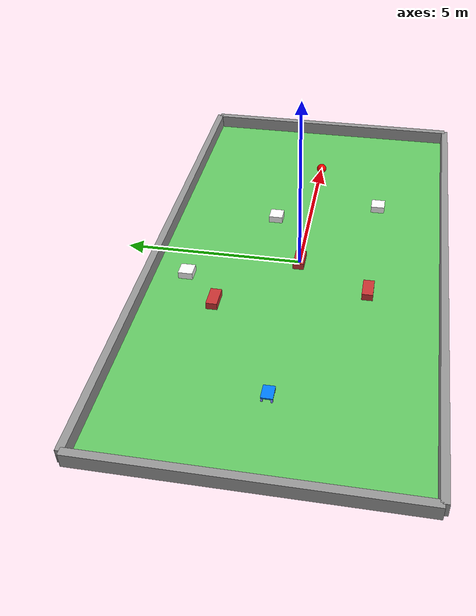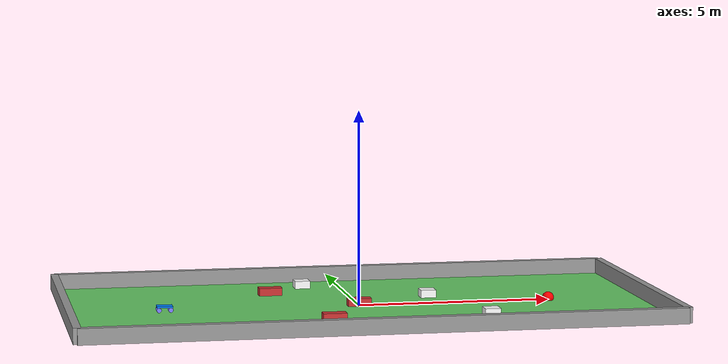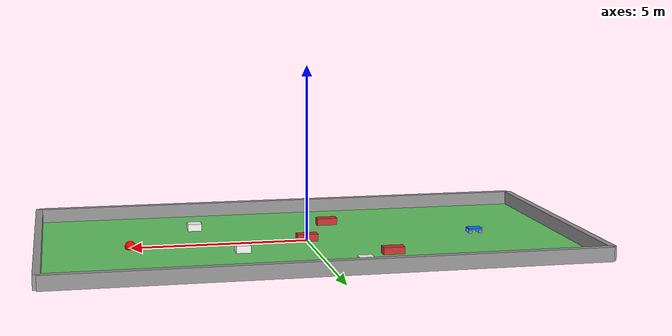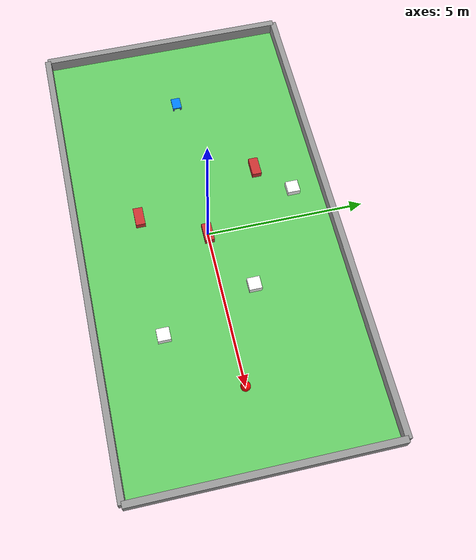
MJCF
<mujoco model="safe_drive_env">
    <compiler angle="degree" coordinate="local" autolimits="true"/>
    <option timestep="0.01" gravity="0 0 -9.8"/>
    <default>
        <joint damping=".03"/>
        <default class="wheel">
            <geom type="cylinder" size=".06 .02" rgba=".5 .5 1 1" friction="2 0.05 0.05"/>
        </default>
        <default class="decor">
            <site type="box" rgba=".5 1 .5 1"/>
        </default>
        <default class="box_obstacle">
            <geom type="box" size="0.2 0.2 0.1"
              contype="1" conaffinity="1"
              rgba="1 1 1 1"
              solref="0.02 1" solimp="0.9 0.95 0.001"/>
        </default>
    </default>
    <worldbody>
        <!-- Ground -->
        <geom name="floor" type="plane" size="7.5 4 0.1" rgba="0.4 0.8 0.4 1"/>
        <!-- Boundary walls -->
        <geom name="wall_left" type="box" size="0.1 4 0.2" pos="-7.5 0 0.2" rgba="0.6 0.6 0.6 1"/>
        <geom name="wall_right" type="box" size="0.1 4 0.2" pos="7.5 0 0.2" rgba="0.6 0.6 0.6 1"/>
        <geom name="wall_bottom" type="box" size="7.5 0.1 0.2" pos="0 -4 0.2" rgba="0.6 0.6 0.6 1"/>
        <geom name="wall_top" type="box" size="7.5 0.1 0.2" pos="0 4 0.2" rgba="0.6 0.6 0.6 1"/>
        <!-- 4-wheel robot -->
        <body name="robot" pos="-5 0 0">
            <freejoint/>
            <!-- Chassis -->
            <body name="chassis_body" pos="0 0 0">
                <geom name="chassis" pos="0 0 0.14" type="box" size="0.2 0.15 0.02" rgba="0 0.5 1 1"/>
                <!-- Front left wheel -->
                <body name="front_left_wheel" pos="0.15 -0.12 0.06" zaxis="0 1 0">
                    <joint name="left" type="hinge" axis="0 0 1"/>
                    <geom class="wheel"/>
                </body>
                <!-- Front right wheel -->
                <body name="front_right_wheel" pos="0.15 0.12 0.06" zaxis="0 1 0">
                    <joint name="right" type="hinge" axis="0 0 1"/>
                    <geom class="wheel"/>
                </body>
                <!-- Rear left wheel (passive but still hinge for rolling) -->
                <body name="rear_left_wheel" pos="-0.15 -0.12 0.06" zaxis="0 1 0">
                    <joint name="rear_left" type="hinge" axis="0 0 1" limited="false"/>
                    <geom class="wheel"/>
                </body>
                <!-- Rear right wheel (passive but still hinge for rolling) -->
                <body name="rear_right_wheel" pos="-0.15 0.12 0.06" zaxis="0 1 0">
                    <joint name="rear_right" type="hinge" axis="0 0 1" limited="false"/>
                    <geom class="wheel"/>
                </body>
            </body>
        </body>
        <!-- Target -->
        <body name="target" pos="5 0 0.05">
            <geom type="sphere" size="0.15" rgba="1 0 0 1"/>
        </body>
        <!-- Static Bricks -->
        <geom name="brick1" type="box" size="0.3 0.15 0.1" pos="-2 2 0.1" rgba="0.8 0.2 0.2 1"/>
        <geom name="brick2" type="box" size="0.3 0.15 0.1" pos="-1 -2 0.1" rgba="0.8 0.2 0.2 1"/>
        <geom name="brick3" type="box" size="0.3 0.15 0.1" pos="0 0 0.1" rgba="0.8 0.2 0.2 1"/>
        <!-- Placeholder boxes -->
        <body name="rand_box1" pos="2 1 0.1">
            <freejoint/>
            <geom name="rand_box1_geom" class="box_obstacle"/>
        </body>
        <body name="rand_box2" pos="3 -2 0.1">
            <freejoint/>
            <geom name="rand_box2_geom" class="box_obstacle"/>
        </body>
        <body name="rand_box3" pos="-1 3 0.1">
            <freejoint/>
            <geom name="rand_box3_geom" class="box_obstacle"/>
        </body>
    </worldbody>
    <!-- Tendon for differential drive -->
    <tendon>
        <fixed name="forward">
            <joint joint="left" coef="1"/>
            <joint joint="right" coef="1"/>
        </fixed>
        <fixed name="turn">
            <joint joint="left"       coef="-1"/>
            <joint joint="right"      coef="1"/>
        </fixed>
    </tendon>
    <!-- Actuators -->
    <actuator>
        <motor name="forward" tendon="forward" ctrlrange="-1 1"/>
        <motor name="turn" tendon="turn" ctrlrange="-1 1"/>
    </actuator>
</mujoco>
